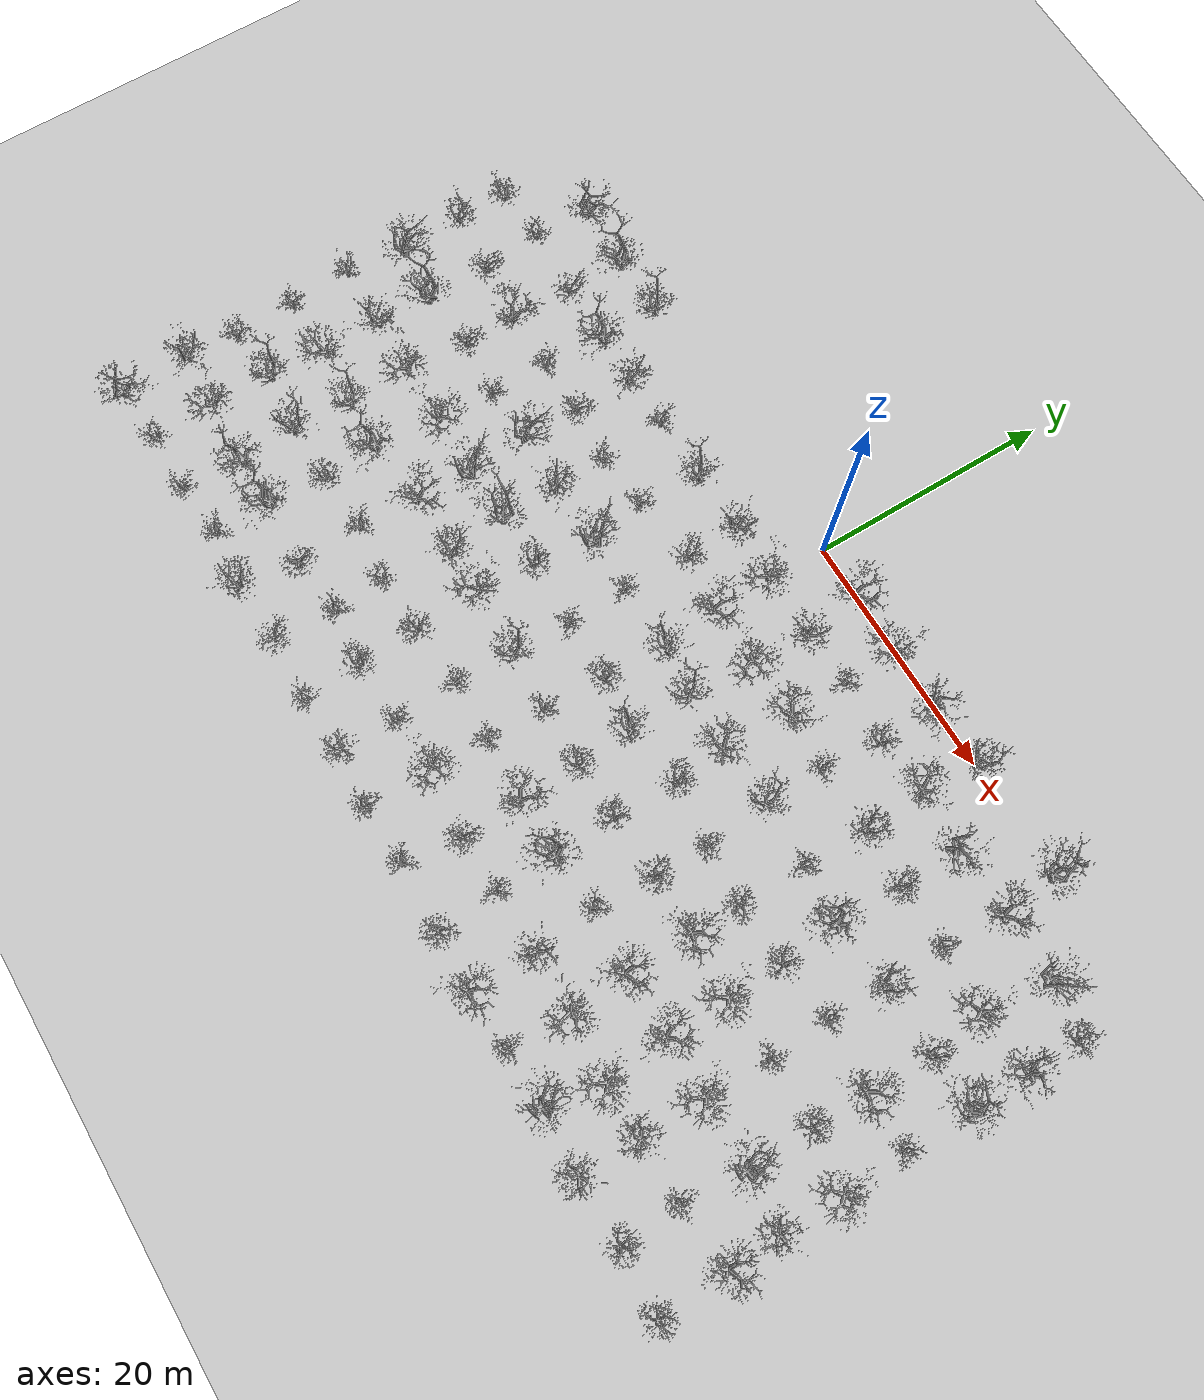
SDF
<sdf version="1.8">
 <world name="random_flat_forest">
  <include><uri>model://my_sun</uri></include>
  <model name="ground_plane">
   <static>true</static>
   <link name="link">
    <collision name="collision">
     <geometry><plane><normal>0 0 1</normal><size>100 100</size></plane></geometry>
    </collision>
    <visual name="visual">
     <geometry><plane><normal>0 0 1</normal><size>100 100</size></plane></geometry>
     <material>
      <script><uri>file://media/materials/scripts/gazebo.material</uri><name>Gazebo/Gray</name></script>
     </material>
    </visual>
   </link>
  </model>
  <include>
   <uri>model://random_tree_2</uri>
   <name>tree_0</name>
   <pose>-40.02 -40.33 0 0 0 5.14</pose>
   <scale>1.17 1.08 0.92</scale>
  </include>
  <include>
   <uri>model://random_tree_3</uri>
   <name>tree_1</name>
   <pose>-40.20 -34.51 0 0 0 4.57</pose>
   <scale>0.92 1.00 1.15</scale>
  </include>
  <include>
   <uri>model://random_tree_1</uri>
   <name>tree_2</name>
   <pose>-39.97 -30.23 0 0 0 4.94</pose>
   <scale>1.00 0.91 1.12</scale>
  </include>
  <include>
   <uri>model://random_tree_1</uri>
   <name>tree_3</name>
   <pose>-40.18 -25.09 0 0 0 5.18</pose>
   <scale>1.12 1.21 1.10</scale>
  </include>
  <include>
   <uri>model://random_tree_1</uri>
   <name>tree_4</name>
   <pose>-40.51 -19.80 0 0 0 1.23</pose>
   <scale>1.01 1.04 0.92</scale>
  </include>
  <include>
   <uri>model://random_tree_2</uri>
   <name>tree_5</name>
   <pose>-39.92 -14.83 0 0 0 5.61</pose>
   <scale>0.95 0.96 0.93</scale>
  </include>
  <include>
   <uri>model://random_tree_4</uri>
   <name>tree_6</name>
   <pose>-40.15 -9.49 0 0 0 5.64</pose>
   <scale>1.17 1.11 1.07</scale>
  </include>
  <include>
   <uri>model://random_tree_4</uri>
   <name>tree_7</name>
   <pose>-40.15 -5.11 0 0 0 1.87</pose>
   <scale>0.94 0.93 0.94</scale>
  </include>
  <include>
   <uri>model://random_tree_1</uri>
   <name>tree_17</name>
   <pose>-35.04 -39.87 0 0 0 3.30</pose>
   <scale>0.93 0.98 0.91</scale>
  </include>
  <include>
   <uri>model://random_tree_0</uri>
   <name>tree_18</name>
   <pose>-35.44 -34.69 0 0 0 5.26</pose>
   <scale>1.04 1.13 0.99</scale>
  </include>
  <include>
   <uri>model://random_tree_3</uri>
   <name>tree_19</name>
   <pose>-35.21 -29.59 0 0 0 1.26</pose>
   <scale>1.12 1.11 0.90</scale>
  </include>
  <include>
   <uri>model://random_tree_0</uri>
   <name>tree_20</name>
   <pose>-34.84 -24.86 0 0 0 3.85</pose>
   <scale>1.11 1.13 0.97</scale>
  </include>
  <include>
   <uri>model://random_tree_3</uri>
   <name>tree_21</name>
   <pose>-35.00 -19.83 0 0 0 3.60</pose>
   <scale>1.05 1.01 0.93</scale>
  </include>
  <include>
   <uri>model://random_tree_2</uri>
   <name>tree_22</name>
   <pose>-34.91 -15.30 0 0 0 1.72</pose>
   <scale>1.16 1.21 1.16</scale>
  </include>
  <include>
   <uri>model://random_tree_4</uri>
   <name>tree_23</name>
   <pose>-34.96 -9.91 0 0 0 3.53</pose>
   <scale>1.00 1.06 1.06</scale>
  </include>
  <include>
   <uri>model://random_tree_1</uri>
   <name>tree_24</name>
   <pose>-35.50 -4.73 0 0 0 3.18</pose>
   <scale>1.12 1.19 1.18</scale>
  </include>
  <include>
   <uri>model://random_tree_2</uri>
   <name>tree_25</name>
   <pose>-35.20 -0.01 0 0 0 4.92</pose>
   <scale>1.00 1.02 1.08</scale>
  </include>
  <include>
   <uri>model://random_tree_1</uri>
   <name>tree_34</name>
   <pose>-30.17 -40.02 0 0 0 4.40</pose>
   <scale>1.18 1.07 0.96</scale>
  </include>
  <include>
   <uri>model://random_tree_2</uri>
   <name>tree_35</name>
   <pose>-29.68 -34.89 0 0 0 3.39</pose>
   <scale>1.12 1.07 1.00</scale>
  </include>
  <include>
   <uri>model://random_tree_3</uri>
   <name>tree_36</name>
   <pose>-30.06 -30.33 0 0 0 0.43</pose>
   <scale>1.09 1.11 0.97</scale>
  </include>
  <include>
   <uri>model://random_tree_3</uri>
   <name>tree_37</name>
   <pose>-29.75 -25.29 0 0 0 1.44</pose>
   <scale>1.20 1.20 1.10</scale>
  </include>
  <include>
   <uri>model://random_tree_0</uri>
   <name>tree_38</name>
   <pose>-30.39 -19.94 0 0 0 5.23</pose>
   <scale>0.91 0.84 1.01</scale>
  </include>
  <include>
   <uri>model://random_tree_4</uri>
   <name>tree_39</name>
   <pose>-29.76 -14.65 0 0 0 3.48</pose>
   <scale>1.14 1.09 0.94</scale>
  </include>
  <include>
   <uri>model://random_tree_0</uri>
   <name>tree_40</name>
   <pose>-29.78 -10.42 0 0 0 1.68</pose>
   <scale>0.95 0.98 1.14</scale>
  </include>
  <include>
   <uri>model://random_tree_4</uri>
   <name>tree_41</name>
   <pose>-29.62 -5.16 0 0 0 3.85</pose>
   <scale>1.11 1.18 1.13</scale>
  </include>
  <include>
   <uri>model://random_tree_2</uri>
   <name>tree_42</name>
   <pose>-29.52 -0.15 0 0 0 2.22</pose>
   <scale>0.97 1.05 1.00</scale>
  </include>
  <include>
   <uri>model://random_tree_1</uri>
   <name>tree_51</name>
   <pose>-25.37 -39.51 0 0 0 1.41</pose>
   <scale>0.99 1.04 0.96</scale>
  </include>
  <include>
   <uri>model://random_tree_2</uri>
   <name>tree_52</name>
   <pose>-25.36 -34.77 0 0 0 2.75</pose>
   <scale>0.97 1.00 0.94</scale>
  </include>
  <include>
   <uri>model://random_tree_4</uri>
   <name>tree_53</name>
   <pose>-25.20 -30.02 0 0 0 2.45</pose>
   <scale>0.94 0.98 1.13</scale>
  </include>
  <include>
   <uri>model://random_tree_2</uri>
   <name>tree_54</name>
   <pose>-25.46 -25.43 0 0 0 2.91</pose>
   <scale>1.14 1.20 1.03</scale>
  </include>
  <include>
   <uri>model://random_tree_0</uri>
   <name>tree_55</name>
   <pose>-25.08 -19.93 0 0 0 5.94</pose>
   <scale>1.18 1.19 1.16</scale>
  </include>
  <include>
   <uri>model://random_tree_1</uri>
   <name>tree_56</name>
   <pose>-24.71 -15.24 0 0 0 4.44</pose>
   <scale>1.02 1.03 1.07</scale>
  </include>
  <include>
   <uri>model://random_tree_1</uri>
   <name>tree_57</name>
   <pose>-24.66 -10.31 0 0 0 0.54</pose>
   <scale>1.12 1.17 1.01</scale>
  </include>
  <include>
   <uri>model://random_tree_2</uri>
   <name>tree_58</name>
   <pose>-24.31 -5.03 0 0 0 2.68</pose>
   <scale>1.15 1.26 1.04</scale>
  </include>
  <include>
   <uri>model://random_tree_3</uri>
   <name>tree_59</name>
   <pose>-24.43 -0.18 0 0 0 1.39</pose>
   <scale>0.97 1.02 1.17</scale>
  </include>
  <include>
   <uri>model://random_tree_3</uri>
   <name>tree_68</name>
   <pose>-20.52 -40.30 0 0 0 6.12</pose>
   <scale>1.17 1.24 1.01</scale>
  </include>
  <include>
   <uri>model://random_tree_4</uri>
   <name>tree_69</name>
   <pose>-19.81 -35.26 0 0 0 3.68</pose>
   <scale>1.02 1.03 1.15</scale>
  </include>
  <include>
   <uri>model://random_tree_1</uri>
   <name>tree_70</name>
   <pose>-20.05 -29.78 0 0 0 1.13</pose>
   <scale>1.12 1.22 1.05</scale>
  </include>
  <include>
   <uri>model://random_tree_0</uri>
   <name>tree_71</name>
   <pose>-19.84 -24.89 0 0 0 0.78</pose>
   <scale>0.99 0.93 1.05</scale>
  </include>
  <include>
   <uri>model://random_tree_2</uri>
   <name>tree_72</name>
   <pose>-19.63 -20.36 0 0 0 6.27</pose>
   <scale>1.17 1.21 1.00</scale>
  </include>
  <include>
   <uri>model://random_tree_2</uri>
   <name>tree_73</name>
   <pose>-20.15 -14.99 0 0 0 5.61</pose>
   <scale>1.06 1.06 0.91</scale>
  </include>
  <include>
   <uri>model://random_tree_4</uri>
   <name>tree_74</name>
   <pose>-20.01 -10.20 0 0 0 3.14</pose>
   <scale>1.03 1.05 1.05</scale>
  </include>
  <include>
   <uri>model://random_tree_3</uri>
   <name>tree_75</name>
   <pose>-20.08 -5.28 0 0 0 4.44</pose>
   <scale>0.98 0.94 0.97</scale>
  </include>
  <include>
   <uri>model://random_tree_4</uri>
   <name>tree_85</name>
   <pose>-15.39 -39.78 0 0 0 4.38</pose>
   <scale>1.12 1.02 1.14</scale>
  </include>
  <include>
   <uri>model://random_tree_1</uri>
   <name>tree_86</name>
   <pose>-14.85 -34.66 0 0 0 1.79</pose>
   <scale>1.12 1.02 0.91</scale>
  </include>
  <include>
   <uri>model://random_tree_1</uri>
   <name>tree_87</name>
   <pose>-15.36 -30.42 0 0 0 3.13</pose>
   <scale>1.04 0.94 1.13</scale>
  </include>
  <include>
   <uri>model://random_tree_3</uri>
   <name>tree_88</name>
   <pose>-14.42 -24.98 0 0 0 5.97</pose>
   <scale>1.07 1.12 0.94</scale>
  </include>
  <include>
   <uri>model://random_tree_2</uri>
   <name>tree_89</name>
   <pose>-15.00 -20.02 0 0 0 1.04</pose>
   <scale>1.07 1.05 0.97</scale>
  </include>
  <include>
   <uri>model://random_tree_3</uri>
   <name>tree_90</name>
   <pose>-15.01 -15.25 0 0 0 5.18</pose>
   <scale>1.14 1.24 0.93</scale>
  </include>
  <include>
   <uri>model://random_tree_1</uri>
   <name>tree_91</name>
   <pose>-15.24 -10.63 0 0 0 3.35</pose>
   <scale>1.12 1.18 1.03</scale>
  </include>
  <include>
   <uri>model://random_tree_1</uri>
   <name>tree_92</name>
   <pose>-15.58 -5.10 0 0 0 0.75</pose>
   <scale>1.07 0.99 1.18</scale>
  </include>
  <include>
   <uri>model://random_tree_1</uri>
   <name>tree_102</name>
   <pose>-9.79 -39.95 0 0 0 2.11</pose>
   <scale>0.91 0.91 0.99</scale>
  </include>
  <include>
   <uri>model://random_tree_4</uri>
   <name>tree_103</name>
   <pose>-10.22 -35.36 0 0 0 5.54</pose>
   <scale>1.13 1.12 1.19</scale>
  </include>
  <include>
   <uri>model://random_tree_4</uri>
   <name>tree_104</name>
   <pose>-10.35 -30.16 0 0 0 1.36</pose>
   <scale>1.02 1.11 1.10</scale>
  </include>
  <include>
   <uri>model://random_tree_0</uri>
   <name>tree_105</name>
   <pose>-10.78 -24.45 0 0 0 4.51</pose>
   <scale>1.07 1.04 0.97</scale>
  </include>
  <include>
   <uri>model://random_tree_4</uri>
   <name>tree_106</name>
   <pose>-10.43 -19.91 0 0 0 5.35</pose>
   <scale>1.08 1.09 1.15</scale>
  </include>
  <include>
   <uri>model://random_tree_2</uri>
   <name>tree_107</name>
   <pose>-9.70 -15.04 0 0 0 0.10</pose>
   <scale>1.11 1.12 1.07</scale>
  </include>
  <include>
   <uri>model://random_tree_1</uri>
   <name>tree_108</name>
   <pose>-10.59 -10.18 0 0 0 4.29</pose>
   <scale>1.19 1.20 1.05</scale>
  </include>
  <include>
   <uri>model://random_tree_3</uri>
   <name>tree_109</name>
   <pose>-10.04 -5.08 0 0 0 1.53</pose>
   <scale>1.11 1.19 0.96</scale>
  </include>
  <include>
   <uri>model://random_tree_4</uri>
   <name>tree_119</name>
   <pose>-5.10 -39.57 0 0 0 2.36</pose>
   <scale>1.15 1.12 0.98</scale>
  </include>
  <include>
   <uri>model://random_tree_1</uri>
   <name>tree_120</name>
   <pose>-4.98 -34.96 0 0 0 4.28</pose>
   <scale>0.96 1.01 0.97</scale>
  </include>
  <include>
   <uri>model://random_tree_1</uri>
   <name>tree_121</name>
   <pose>-5.17 -29.72 0 0 0 5.31</pose>
   <scale>0.94 1.01 1.16</scale>
  </include>
  <include>
   <uri>model://random_tree_3</uri>
   <name>tree_122</name>
   <pose>-4.82 -24.95 0 0 0 0.93</pose>
   <scale>1.02 1.10 1.11</scale>
  </include>
  <include>
   <uri>model://random_tree_1</uri>
   <name>tree_123</name>
   <pose>-4.76 -20.14 0 0 0 6.21</pose>
   <scale>0.99 1.02 1.01</scale>
  </include>
  <include>
   <uri>model://random_tree_1</uri>
   <name>tree_124</name>
   <pose>-5.01 -15.11 0 0 0 5.95</pose>
   <scale>0.95 0.94 1.06</scale>
  </include>
  <include>
   <uri>model://random_tree_4</uri>
   <name>tree_125</name>
   <pose>-4.79 -9.44 0 0 0 4.62</pose>
   <scale>0.98 0.99 0.98</scale>
  </include>
  <include>
   <uri>model://random_tree_3</uri>
   <name>tree_126</name>
   <pose>-4.87 -4.88 0 0 0 3.51</pose>
   <scale>1.02 0.97 1.09</scale>
  </include>
  <include>
   <uri>model://random_tree_1</uri>
   <name>tree_136</name>
   <pose>-0.32 -40.05 0 0 0 2.29</pose>
   <scale>1.17 1.07 0.96</scale>
  </include>
  <include>
   <uri>model://random_tree_0</uri>
   <name>tree_137</name>
   <pose>-0.52 -34.52 0 0 0 5.75</pose>
   <scale>1.18 1.26 1.02</scale>
  </include>
  <include>
   <uri>model://random_tree_1</uri>
   <name>tree_138</name>
   <pose>-0.13 -29.97 0 0 0 5.10</pose>
   <scale>1.02 0.95 0.96</scale>
  </include>
  <include>
   <uri>model://random_tree_1</uri>
   <name>tree_139</name>
   <pose>-0.03 -25.13 0 0 0 4.10</pose>
   <scale>1.19 1.25 0.91</scale>
  </include>
  <include>
   <uri>model://random_tree_4</uri>
   <name>tree_140</name>
   <pose>0.38 -20.05 0 0 0 5.93</pose>
   <scale>0.95 0.86 1.01</scale>
  </include>
  <include>
   <uri>model://random_tree_3</uri>
   <name>tree_141</name>
   <pose>0.69 -14.67 0 0 0 2.16</pose>
   <scale>1.02 1.02 1.20</scale>
  </include>
  <include>
   <uri>model://random_tree_0</uri>
   <name>tree_142</name>
   <pose>-0.15 -10.14 0 0 0 0.58</pose>
   <scale>1.14 1.04 0.96</scale>
  </include>
  <include>
   <uri>model://random_tree_0</uri>
   <name>tree_143</name>
   <pose>-0.28 -5.01 0 0 0 4.79</pose>
   <scale>1.09 1.14 0.92</scale>
  </include>
  <include>
   <uri>model://random_tree_1</uri>
   <name>tree_153</name>
   <pose>4.64 -39.81 0 0 0 1.38</pose>
   <scale>1.00 1.09 0.93</scale>
  </include>
  <include>
   <uri>model://random_tree_4</uri>
   <name>tree_154</name>
   <pose>5.30 -35.16 0 0 0 3.37</pose>
   <scale>0.97 0.95 1.02</scale>
  </include>
  <include>
   <uri>model://random_tree_0</uri>
   <name>tree_155</name>
   <pose>5.14 -30.25 0 0 0 1.49</pose>
   <scale>0.93 0.84 1.10</scale>
  </include>
  <include>
   <uri>model://random_tree_4</uri>
   <name>tree_156</name>
   <pose>5.07 -25.23 0 0 0 5.97</pose>
   <scale>1.01 1.03 1.10</scale>
  </include>
  <include>
   <uri>model://random_tree_3</uri>
   <name>tree_157</name>
   <pose>4.76 -20.42 0 0 0 2.08</pose>
   <scale>1.08 1.06 1.14</scale>
  </include>
  <include>
   <uri>model://random_tree_3</uri>
   <name>tree_158</name>
   <pose>4.77 -15.40 0 0 0 1.11</pose>
   <scale>1.08 1.10 1.09</scale>
  </include>
  <include>
   <uri>model://random_tree_0</uri>
   <name>tree_159</name>
   <pose>4.80 -9.83 0 0 0 5.45</pose>
   <scale>1.14 1.05 0.94</scale>
  </include>
  <include>
   <uri>model://random_tree_3</uri>
   <name>tree_160</name>
   <pose>5.33 -5.06 0 0 0 3.51</pose>
   <scale>1.01 1.00 0.94</scale>
  </include>
  <include>
   <uri>model://random_tree_0</uri>
   <name>tree_161</name>
   <pose>4.37 -0.21 0 0 0 0.66</pose>
   <scale>1.07 1.07 1.14</scale>
  </include>
  <include>
   <uri>model://random_tree_4</uri>
   <name>tree_170</name>
   <pose>10.37 -40.02 0 0 0 3.20</pose>
   <scale>1.17 1.16 1.12</scale>
  </include>
  <include>
   <uri>model://random_tree_1</uri>
   <name>tree_171</name>
   <pose>10.00 -35.07 0 0 0 5.49</pose>
   <scale>0.91 0.91 1.09</scale>
  </include>
  <include>
   <uri>model://random_tree_2</uri>
   <name>tree_172</name>
   <pose>10.15 -30.15 0 0 0 1.96</pose>
   <scale>1.06 0.96 0.97</scale>
  </include>
  <include>
   <uri>model://random_tree_4</uri>
   <name>tree_173</name>
   <pose>9.76 -25.02 0 0 0 0.66</pose>
   <scale>0.98 0.88 1.09</scale>
  </include>
  <include>
   <uri>model://random_tree_4</uri>
   <name>tree_174</name>
   <pose>9.86 -19.68 0 0 0 4.91</pose>
   <scale>0.94 0.92 1.03</scale>
  </include>
  <include>
   <uri>model://random_tree_0</uri>
   <name>tree_175</name>
   <pose>9.56 -15.39 0 0 0 2.64</pose>
   <scale>0.91 1.00 1.19</scale>
  </include>
  <include>
   <uri>model://random_tree_0</uri>
   <name>tree_176</name>
   <pose>10.02 -9.61 0 0 0 2.92</pose>
   <scale>1.08 1.12 0.94</scale>
  </include>
  <include>
   <uri>model://random_tree_1</uri>
   <name>tree_177</name>
   <pose>9.86 -4.80 0 0 0 5.42</pose>
   <scale>1.03 1.12 1.13</scale>
  </include>
  <include>
   <uri>model://random_tree_0</uri>
   <name>tree_178</name>
   <pose>9.73 -0.18 0 0 0 3.83</pose>
   <scale>0.99 0.98 0.99</scale>
  </include>
  <include>
   <uri>model://random_tree_0</uri>
   <name>tree_187</name>
   <pose>15.13 -40.38 0 0 0 0.26</pose>
   <scale>1.02 0.93 0.91</scale>
  </include>
  <include>
   <uri>model://random_tree_3</uri>
   <name>tree_188</name>
   <pose>15.23 -34.79 0 0 0 3.79</pose>
   <scale>0.95 0.97 0.93</scale>
  </include>
  <include>
   <uri>model://random_tree_1</uri>
   <name>tree_189</name>
   <pose>14.72 -29.55 0 0 0 1.53</pose>
   <scale>0.96 0.90 1.01</scale>
  </include>
  <include>
   <uri>model://random_tree_4</uri>
   <name>tree_190</name>
   <pose>14.93 -24.79 0 0 0 4.35</pose>
   <scale>1.17 1.28 1.19</scale>
  </include>
  <include>
   <uri>model://random_tree_1</uri>
   <name>tree_191</name>
   <pose>15.17 -20.20 0 0 0 2.46</pose>
   <scale>1.07 1.08 1.13</scale>
  </include>
  <include>
   <uri>model://random_tree_3</uri>
   <name>tree_192</name>
   <pose>14.72 -14.97 0 0 0 0.63</pose>
   <scale>1.10 1.17 1.10</scale>
  </include>
  <include>
   <uri>model://random_tree_1</uri>
   <name>tree_193</name>
   <pose>14.61 -10.02 0 0 0 0.49</pose>
   <scale>1.00 0.98 0.95</scale>
  </include>
  <include>
   <uri>model://random_tree_4</uri>
   <name>tree_194</name>
   <pose>15.14 -5.10 0 0 0 0.56</pose>
   <scale>1.07 1.12 1.11</scale>
  </include>
  <include>
   <uri>model://random_tree_2</uri>
   <name>tree_195</name>
   <pose>14.98 -0.08 0 0 0 3.39</pose>
   <scale>0.97 0.91 0.95</scale>
  </include>
  <include>
   <uri>model://random_tree_1</uri>
   <name>tree_204</name>
   <pose>19.99 -39.91 0 0 0 2.41</pose>
   <scale>0.97 1.01 0.95</scale>
  </include>
  <include>
   <uri>model://random_tree_0</uri>
   <name>tree_205</name>
   <pose>20.09 -34.86 0 0 0 5.27</pose>
   <scale>1.10 1.18 1.04</scale>
  </include>
  <include>
   <uri>model://random_tree_0</uri>
   <name>tree_206</name>
   <pose>19.76 -30.28 0 0 0 0.61</pose>
   <scale>1.10 1.01 0.92</scale>
  </include>
  <include>
   <uri>model://random_tree_0</uri>
   <name>tree_207</name>
   <pose>19.79 -24.65 0 0 0 6.20</pose>
   <scale>1.11 1.01 1.07</scale>
  </include>
  <include>
   <uri>model://random_tree_4</uri>
   <name>tree_208</name>
   <pose>19.95 -20.54 0 0 0 1.73</pose>
   <scale>0.95 0.96 1.14</scale>
  </include>
  <include>
   <uri>model://random_tree_1</uri>
   <name>tree_209</name>
   <pose>19.90 -15.15 0 0 0 5.43</pose>
   <scale>0.98 0.99 0.94</scale>
  </include>
  <include>
   <uri>model://random_tree_3</uri>
   <name>tree_210</name>
   <pose>19.92 -9.80 0 0 0 4.72</pose>
   <scale>0.98 0.95 1.03</scale>
  </include>
  <include>
   <uri>model://random_tree_0</uri>
   <name>tree_211</name>
   <pose>19.72 -4.58 0 0 0 2.43</pose>
   <scale>0.92 0.88 1.16</scale>
  </include>
  <include>
   <uri>model://random_tree_3</uri>
   <name>tree_212</name>
   <pose>20.15 -0.04 0 0 0 5.47</pose>
   <scale>1.20 1.26 1.10</scale>
  </include>
  <include>
   <uri>model://random_tree_2</uri>
   <name>tree_221</name>
   <pose>24.63 -39.95 0 0 0 0.19</pose>
   <scale>1.16 1.13 1.15</scale>
  </include>
  <include>
   <uri>model://random_tree_0</uri>
   <name>tree_222</name>
   <pose>25.55 -35.16 0 0 0 4.61</pose>
   <scale>0.91 0.92 0.94</scale>
  </include>
  <include>
   <uri>model://random_tree_0</uri>
   <name>tree_223</name>
   <pose>25.03 -30.09 0 0 0 1.03</pose>
   <scale>0.93 0.88 1.09</scale>
  </include>
  <include>
   <uri>model://random_tree_0</uri>
   <name>tree_224</name>
   <pose>25.04 -24.80 0 0 0 4.46</pose>
   <scale>1.16 1.22 1.20</scale>
  </include>
  <include>
   <uri>model://random_tree_4</uri>
   <name>tree_225</name>
   <pose>25.03 -20.26 0 0 0 0.81</pose>
   <scale>1.19 1.24 0.94</scale>
  </include>
  <include>
   <uri>model://random_tree_2</uri>
   <name>tree_226</name>
   <pose>24.69 -15.42 0 0 0 2.06</pose>
   <scale>0.92 0.84 0.91</scale>
  </include>
  <include>
   <uri>model://random_tree_4</uri>
   <name>tree_227</name>
   <pose>24.67 -10.08 0 0 0 4.19</pose>
   <scale>1.03 0.99 1.01</scale>
  </include>
  <include>
   <uri>model://random_tree_2</uri>
   <name>tree_228</name>
   <pose>24.60 -5.03 0 0 0 4.14</pose>
   <scale>1.06 1.00 1.14</scale>
  </include>
  <include>
   <uri>model://random_tree_3</uri>
   <name>tree_238</name>
   <pose>29.87 -40.04 0 0 0 2.23</pose>
   <scale>1.11 1.09 1.07</scale>
  </include>
  <include>
   <uri>model://random_tree_3</uri>
   <name>tree_239</name>
   <pose>29.96 -35.14 0 0 0 1.73</pose>
   <scale>0.91 0.82 1.16</scale>
  </include>
  <include>
   <uri>model://random_tree_0</uri>
   <name>tree_240</name>
   <pose>29.85 -29.84 0 0 0 4.64</pose>
   <scale>1.05 1.04 0.96</scale>
  </include>
  <include>
   <uri>model://random_tree_1</uri>
   <name>tree_241</name>
   <pose>29.99 -24.60 0 0 0 3.67</pose>
   <scale>1.07 1.16 1.15</scale>
  </include>
  <include>
   <uri>model://random_tree_1</uri>
   <name>tree_242</name>
   <pose>29.92 -19.67 0 0 0 0.59</pose>
   <scale>1.13 1.14 0.97</scale>
  </include>
  <include>
   <uri>model://random_tree_3</uri>
   <name>tree_243</name>
   <pose>29.84 -14.99 0 0 0 4.89</pose>
   <scale>0.99 1.07 0.91</scale>
  </include>
  <include>
   <uri>model://random_tree_1</uri>
   <name>tree_244</name>
   <pose>29.92 -9.89 0 0 0 2.06</pose>
   <scale>1.17 1.17 0.94</scale>
  </include>
  <include>
   <uri>model://random_tree_0</uri>
   <name>tree_245</name>
   <pose>30.25 -4.88 0 0 0 0.82</pose>
   <scale>0.96 1.04 1.02</scale>
  </include>
  <include>
   <uri>model://random_tree_2</uri>
   <name>tree_246</name>
   <pose>29.70 -0.12 0 0 0 0.28</pose>
   <scale>1.05 1.13 1.04</scale>
  </include>
  <include>
   <uri>model://random_tree_4</uri>
   <name>tree_255</name>
   <pose>35.14 -39.96 0 0 0 5.01</pose>
   <scale>0.99 0.92 1.07</scale>
  </include>
  <include>
   <uri>model://random_tree_1</uri>
   <name>tree_256</name>
   <pose>34.88 -35.05 0 0 0 2.28</pose>
   <scale>1.18 1.16 1.08</scale>
  </include>
  <include>
   <uri>model://random_tree_2</uri>
   <name>tree_257</name>
   <pose>35.37 -30.10 0 0 0 6.24</pose>
   <scale>1.12 1.05 1.06</scale>
  </include>
  <include>
   <uri>model://random_tree_4</uri>
   <name>tree_258</name>
   <pose>35.39 -24.67 0 0 0 6.02</pose>
   <scale>0.94 0.89 0.99</scale>
  </include>
  <include>
   <uri>model://random_tree_0</uri>
   <name>tree_259</name>
   <pose>35.28 -20.19 0 0 0 6.22</pose>
   <scale>1.18 1.09 1.06</scale>
  </include>
  <include>
   <uri>model://random_tree_4</uri>
   <name>tree_260</name>
   <pose>35.47 -14.88 0 0 0 3.69</pose>
   <scale>1.15 1.12 1.13</scale>
  </include>
  <include>
   <uri>model://random_tree_0</uri>
   <name>tree_261</name>
   <pose>35.02 -10.18 0 0 0 3.96</pose>
   <scale>0.98 0.93 1.17</scale>
  </include>
  <include>
   <uri>model://random_tree_2</uri>
   <name>tree_262</name>
   <pose>35.60 -4.76 0 0 0 4.96</pose>
   <scale>1.14 1.19 1.08</scale>
  </include>
  <include>
   <uri>model://random_tree_4</uri>
   <name>tree_272</name>
   <pose>40.33 -40.24 0 0 0 5.85</pose>
   <scale>1.04 1.09 1.17</scale>
  </include>
  <include>
   <uri>model://random_tree_0</uri>
   <name>tree_273</name>
   <pose>40.07 -34.59 0 0 0 0.66</pose>
   <scale>1.12 1.05 1.00</scale>
  </include>
  <include>
   <uri>model://random_tree_3</uri>
   <name>tree_274</name>
   <pose>40.01 -30.42 0 0 0 1.78</pose>
   <scale>0.94 0.87 1.17</scale>
  </include>
  <include>
   <uri>model://random_tree_0</uri>
   <name>tree_275</name>
   <pose>40.15 -25.22 0 0 0 4.24</pose>
   <scale>0.99 1.04 1.20</scale>
  </include>
  <include>
   <uri>model://random_tree_1</uri>
   <name>tree_276</name>
   <pose>39.91 -20.16 0 0 0 6.24</pose>
   <scale>0.99 1.03 0.95</scale>
  </include>
  <include>
   <uri>model://random_tree_2</uri>
   <name>tree_277</name>
   <pose>40.06 -14.88 0 0 0 0.72</pose>
   <scale>1.07 1.06 1.04</scale>
  </include>
  <include>
   <uri>model://random_tree_2</uri>
   <name>tree_278</name>
   <pose>40.24 -9.81 0 0 0 2.16</pose>
   <scale>1.08 1.04 1.00</scale>
  </include>
  <include>
   <uri>model://random_tree_4</uri>
   <name>tree_279</name>
   <pose>40.05 -5.58 0 0 0 5.77</pose>
   <scale>1.16 1.27 0.91</scale>
  </include>
 </world>
</sdf>
